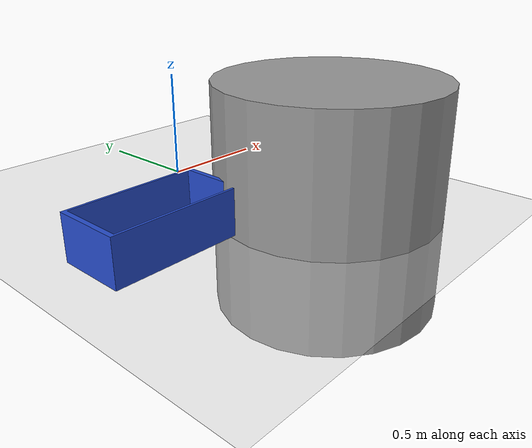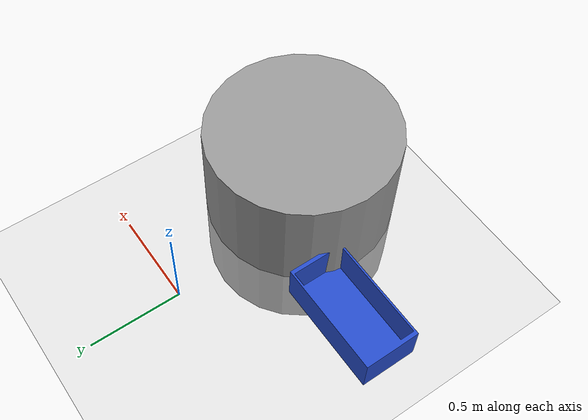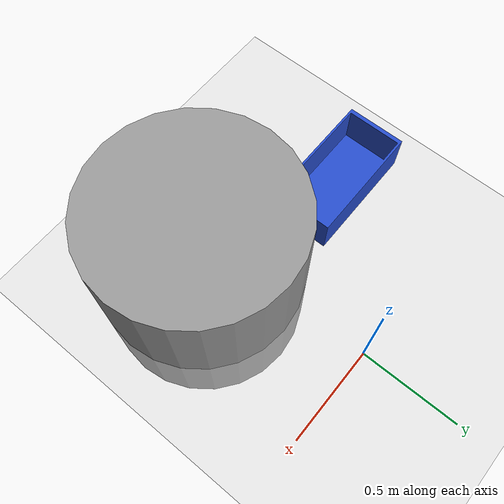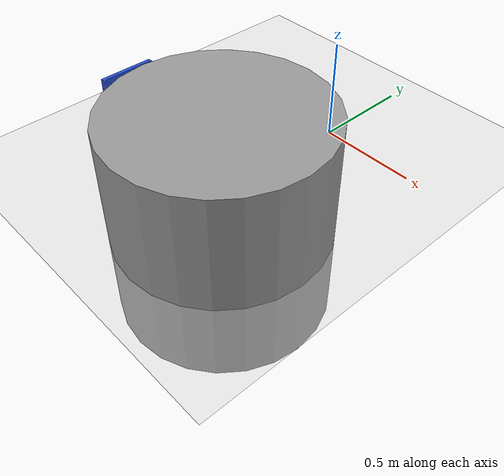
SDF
<sdf version="1.6">
 <world name="default">
  <light name="sun" type="directional">
   <pose>0 0 10 0 -0 0</pose>
   <diffuse>0.8 0.8 0.8 1</diffuse>
   <specular>0.2 0.2 0.2 1</specular>
   <attenuation>
    <range>1000</range>
    <constant>0.9</constant>
    <linear>0.01</linear>
    <quadratic>0.001</quadratic>
   </attenuation>
   <direction>-0.5 0.1 -0.9</direction>
  </light>
  <model name="ground_plane">
   <static>1</static>
   <link name="ground_plane::link">
    <collision name="collision">
     <geometry><plane><normal>0 0 1</normal><size>100 100</size></plane></geometry>
     <surface><friction><ode><mu>100</mu><mu2>50</mu2></ode></friction></surface>
    </collision>
    <visual name="visual">
     <cast_shadows>0</cast_shadows>
     <geometry><plane><normal>0 0 1</normal><size>100 100</size></plane></geometry>
     <material>
      <script><uri>file://media/materials/scripts/gazebo.material</uri><name>Gazebo/Grey</name></script>
     </material>
    </visual>
   </link>
  </model>
  <gravity>0 0 -9.8</gravity>
  <magnetic_field>6e-06 2.3e-05 -4.2e-05</magnetic_field>
  <atmosphere type="adiabatic"/>
  <physics name="default_physics" default="0" type="ode">
   <max_step_size>0.001</max_step_size>
   <real_time_factor>1</real_time_factor>
   <real_time_update_rate>1000</real_time_update_rate>
  </physics>
  <scene><ambient>0.4 0.4 0.4 1</ambient><background>0.7 0.7 0.7 1</background><shadows>1</shadows></scene>
  <audio><device>default</device></audio>
  <spherical_coordinates>
   <surface_model>EARTH_WGS84</surface_model>
   <latitude_deg>0</latitude_deg>
   <longitude_deg>0</longitude_deg>
   <elevation>0</elevation>
   <heading_deg>0</heading_deg>
  </spherical_coordinates>
  <model name="unit_cylinder">
   <pose>0.14438 -0.844665 0.076396 -1e-06 -2e-06 0.000686</pose>
   <link name="link">
    <inertial>
     <mass>1</mass>
     <inertia><ixx>0.145833</ixx><ixy>0</ixy><ixz>0</ixz><iyy>0.145833</iyy><iyz>0</iyz><izz>0.125</izz></inertia>
    </inertial>
    <collision name="collision">
     <geometry><cylinder><radius>0.499997</radius><length>1</length></cylinder></geometry>
    </collision>
    <visual name="visual">
     <geometry><cylinder><radius>0.499997</radius><length>1</length></cylinder></geometry>
     <material>
      <script><name>Gazebo/Grey</name><uri>file://media/materials/scripts/gazebo.material</uri></script>
     </material>
    </visual>
   </link>
  </model>
  <model name="dropbox">
   <link name="dropbox::link_0">
    <pose>0 -0 0 0 0 -1.56873</pose>
    <inertial>
     <mass>1</mass>
     <inertia>
      <ixx>0.166667</ixx>
      <ixy>0</ixy>
      <ixz>0</ixz>
      <iyy>0.166667</iyy>
      <iyz>0</iyz>
      <izz>0.166667</izz>
     </inertia>
    </inertial>
    <visual name="visual">
     <geometry><mesh><uri>model://dropbox/meshes/dropbox.dae</uri><scale>1 1 1</scale></mesh></geometry>
     <material>
      <lighting>1</lighting>
      <script><uri>file://media/materials/scripts/gazebo.material</uri><name>Gazebo/Blue</name></script>
      <ambient>0.3 0.3 0.3 1</ambient>
      <diffuse>0.7 0.7 0.7 1</diffuse>
      <specular>0.01 0.01 0.01 1</specular>
      <emissive>0 0 1 1</emissive>
     </material>
    </visual>
    <collision name="collision">
     <geometry><mesh><uri>model://dropbox/meshes/dropbox.dae</uri><scale>1 1 1</scale></mesh></geometry>
     <surface>
      <friction>
       <ode><mu>1</mu><mu2>1</mu2><fdir1>0 0 0</fdir1><slip1>0</slip1><slip2>0</slip2></ode>
       <torsional>
        <coefficient>1</coefficient>
        <patch_radius>0</patch_radius>
        <surface_radius>0</surface_radius>
        <use_patch_radius>1</use_patch_radius>
        <ode><slip>0</slip></ode>
       </torsional>
      </friction>
      <bounce><restitution_coefficient>0</restitution_coefficient><threshold>1e+06</threshold></bounce>
      <contact>
       <collide_without_contact>0</collide_without_contact>
       <collide_without_contact_bitmask>1</collide_without_contact_bitmask>
       <collide_bitmask>1</collide_bitmask>
       <ode>
        <soft_cfm>0</soft_cfm>
        <soft_erp>0.2</soft_erp>
        <kp>1e+13</kp>
        <kd>1</kd>
        <max_vel>0.01</max_vel>
        <min_depth>0</min_depth>
       </ode>
       <bullet>
        <split_impulse>1</split_impulse>
        <split_impulse_penetration_threshold>-0.01</split_impulse_penetration_threshold>
        <soft_cfm>0</soft_cfm>
        <soft_erp>0.2</soft_erp>
        <kp>1e+13</kp>
        <kd>1</kd>
       </bullet>
      </contact>
     </surface>
    </collision>
   </link>
   <static>1</static>
   <pose>-0.60425 -0.609554 0.01714 0 -0 0</pose>
  </model>
 </world>
</sdf>
